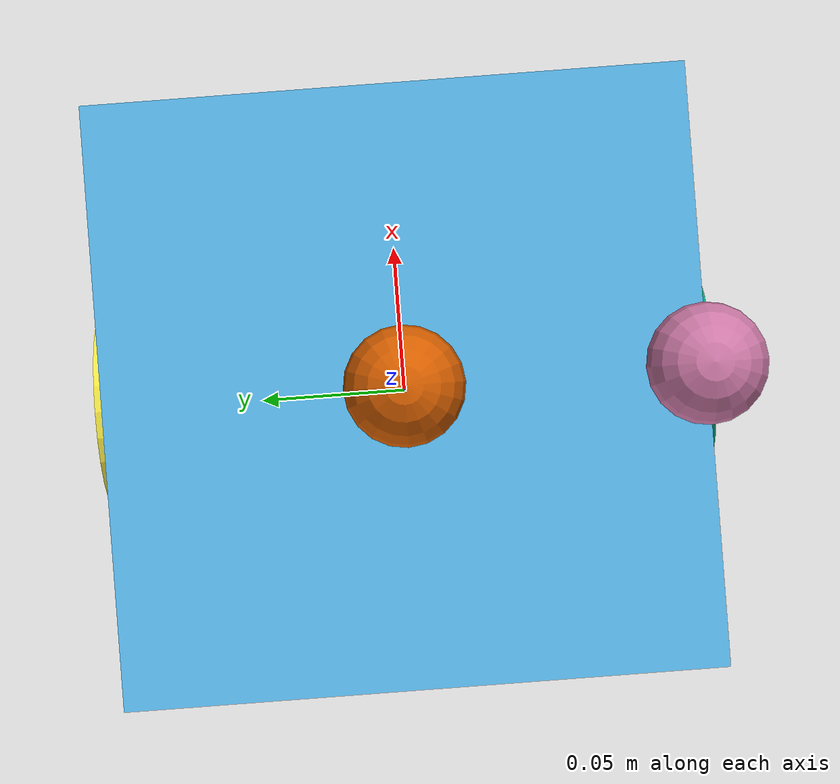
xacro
<?xml version="1.0"?>
<robot name="my_robot" xmlns:xacro="http://www.ros.org/wiki/xacro">

    <xacro:include filename="$(find my_robot_description)/urdf/common_properties.xacro" />
    <xacro:include filename="$(find my_robot_description)/urdf/mobile_base.xacro" />
    <xacro:include filename="$(find my_robot_description)/urdf/mobile_base.ros2_control.xacro" />

</robot>

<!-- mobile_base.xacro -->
<robot xmlns:xacro="http://www.ros.org/wiki/xacro">

    <xacro:property name="base_length" value="0.16" />
    <xacro:property name="base_width" value="0.16" />
    <xacro:property name="base_height" value="0.16" />
    <xacro:property name="wheel_radius" value="0.0325" />
    <xacro:property name="wheel_length" value="0.02" />

    <link name="base_footprint" />

    <link name="base_link">
        <visual>
            <geometry>
                <box size="${base_length} ${base_width} ${base_height}" />
            </geometry>
            <origin xyz="0 0 ${base_height / 2.0}" rpy="0 0 0" />
        </visual>
    </link>

    <xacro:macro name="wheel_link" params="prefix">
        <link name="${prefix}_wheel_link">
            <visual>
                <geometry>
                    <cylinder radius="${wheel_radius}" length="${wheel_length}" />
                </geometry>
                <origin xyz="0 0 0" rpy="${pi / 2.0} 0 0" />
            </visual>
        </link>
    </xacro:macro>

    <xacro:wheel_link prefix="right" />
    <xacro:wheel_link prefix="left" />

    <link name="caster_wheel_link">
        <visual>
            <geometry>
                <sphere radius="${wheel_radius / 2.0}" />
            </geometry>
            <origin xyz="0 0 0" rpy="0 0 0" />
        </visual>
    </link>

    <link name="laser">
        <visual>
            <geometry>
                <sphere radius="${wheel_radius / 2.0}" />
            </geometry>
            <origin xyz="0 0 0" rpy="0 0 0" />
        </visual>
    </link>

    <joint name="base_joint" type="fixed">
        <parent link="base_footprint" />
        <child link="base_link" />
        <origin xyz="0 0 ${wheel_radius}" rpy="0 0 0" />
    </joint>

    <joint name="base_right_wheel_joint" type="continuous">
        <parent link="base_link" />
        <child link="right_wheel_link" />
        <origin xyz="0 ${-(base_width + wheel_length) / 2.0} 0" rpy="0 0 0" />
        <axis xyz="0 1 0" />
    </joint>

    <joint name="base_left_wheel_joint" type="continuous">
        <parent link="base_link" />
        <child link="left_wheel_link" />
        <origin xyz="0 ${(base_width + wheel_length) / 2.0} 0" rpy="0 0 0" />
        <axis xyz="0 1 0" />
    </joint>

    <joint name="base_caster_wheel_joint" type="fixed">
        <parent link="base_link" />
        <child link="caster_wheel_link" />
        <origin xyz="${base_length / 3.0} 0 ${-wheel_radius / 2.0}" rpy="0 0 0" />
    </joint>

    <joint name="base_lidar" type="fixed">
        <parent link="base_link" />
        <child link="laser" />
        <origin xyz="0 0 ${base_height}" rpy="0 0 0" />
        <!-- ${pi} -->
    </joint>

    <link name="camera_link">
        <visual>
            <geometry>
                <sphere radius="${wheel_radius / 2.0}" />
            </geometry>
            <origin xyz="0 0 0" rpy="0 0 0"/>
        </visual>
    </link>

    <joint name="camera_joint" type="fixed">
        <parent link="base_link"/>
        <child link="camera_link"/>
        <origin xyz="0 ${-base_width / 2.0} ${base_height}" rpy="0 0 ${-pi/2}"/>
    </joint>

    <link name="camera_link_optical"/>

    <joint name="camera_optical_joint" type="fixed">
        <parent link="camera_link"/>
        <child link="camera_link_optical"/>
        <origin xyz="0 0 0" rpy="${-pi/2} 0 ${-pi/2}"/>
    </joint>

    <link name="imu_link"/>

    <joint name="imu_joint" type="fixed">
        <parent link="base_link"/>
        <child link="imu_link"/>
        <origin xyz="0.00 0.0 0.00" rpy="0 0 0"/>
    </joint>

</robot>
